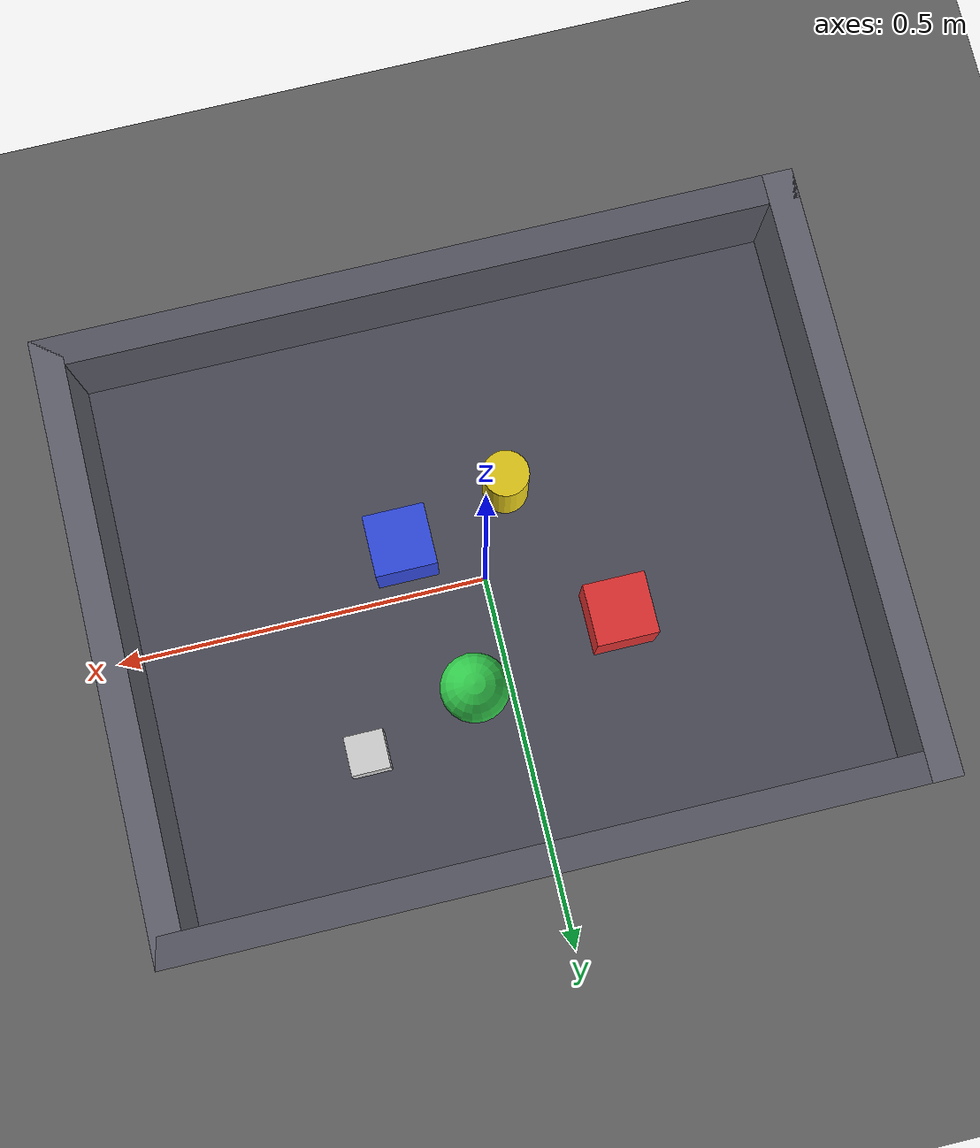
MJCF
<mujoco model="example_factory">
  <compiler angle="degree" coordinate="local" />

  <asset>
    <texture name="tex_floor" type="2d" builtin="checker" width="512" height="512"
             rgb1="0.3 0.3 0.3" rgb2="0.5 0.5 0.5" />
    <material name="mat_floor" texture="tex_floor" reflectance="0.1" />
  </asset>

  <worldbody>
    <!-- ── Lighting ──────────────────────────────────────────────────── -->
    <light name="key_light" directional="false"
           pos="2 2 3" dir="0 0 -1"
           diffuse="0.8 0.8 0.8" ambient="0.3 0.3 0.3" specular="0.2 0.2 0.2"
           castshadow="true" />

    <light name="fill_light" directional="false"
           pos="-1 1 2" dir="0 0 -1"
           diffuse="0.4 0.4 0.5" ambient="0.15 0.15 0.2" specular="0.1 0.1 0.1"
           castshadow="false" />

    <!-- Floor -->
    <geom name="floor" type="plane" pos="0 0 0" size="5 5 0.1" material="mat_floor" />

    <!-- Bin / container -->
    <body name="bin" pos="0 0 0.05">
      <geom name="bin_base" type="box" pos="0 0 -0.03" size="0.5 0.4 0.025"
            rgba="0.3 0.3 0.35 1" />
      <!-- Walls -->
      <geom name="bin_wall_left" type="box" pos="-0.48 0 0.05" size="0.02 0.4 0.075"
            rgba="0.4 0.4 0.45 1" />
      <geom name="bin_wall_right" type="box" pos="0.48 0 0.05" size="0.02 0.4 0.075"
            rgba="0.4 0.4 0.45 1" />
      <geom name="bin_wall_front" type="box" pos="0 0.38 0.05" size="0.5 0.02 0.075"
            rgba="0.35 0.35 0.4 1" />
      <geom name="bin_wall_back" type="box" pos="0 -0.38 0.05" size="0.5 0.02 0.075"
            rgba="0.35 0.35 0.4 1" />
    </body>

    <!-- Objects in bin -->
    <!-- Red cube -->
    <body name="cube_red" pos="-0.15 0.1 0.1">
      <geom name="cube_red_geom" type="box" size="0.04 0.04 0.04"
            rgba="0.9 0.2 0.2 1" />
    </body>

    <!-- Blue cube -->
    <body name="cube_blue" pos="0.1 -0.05 0.1">
      <geom name="cube_blue_geom" type="box" size="0.04 0.04 0.04"
            rgba="0.2 0.3 0.9 1" />
    </body>

    <!-- Green sphere -->
    <body name="sphere_green" pos="0.05 0.15 0.1">
      <geom name="sphere_green_geom" type="sphere" size="0.045"
            rgba="0.2 0.8 0.3 1" />
    </body>

    <!-- Yellow cylinder -->
    <body name="cylinder_yellow" pos="-0.05 -0.1 0.1">
      <geom name="cylinder_yellow_geom" type="cylinder" size="0.03 0.05"
            rgba="0.9 0.8 0.1 1" />
    </body>

    <!-- White small box -->
    <body name="box_white" pos="0.2 0.2 0.1">
      <geom name="box_white_geom" type="box" size="0.025 0.025 0.025"
            rgba="0.85 0.85 0.85 1" />
    </body>
    <!-- ── Cameras ────────────────────────────────────────────────────── -->
    <camera name="cam_front" mode="fixed"
            pos="0 1.5 1.2" quat="0.6 0.4 0.4 0.55"
            fovy="55" />

    <camera name="cam_top" mode="fixed"
            pos="0 0 3.0" quat="0.707 0.707 0 0"
            fovy="45" />

    <camera name="cam_side" mode="fixed"
            pos="1.5 0 1.0" quat="0.5 0.5 0.5 0.5"
            fovy="50" />

  </worldbody>

</mujoco>
